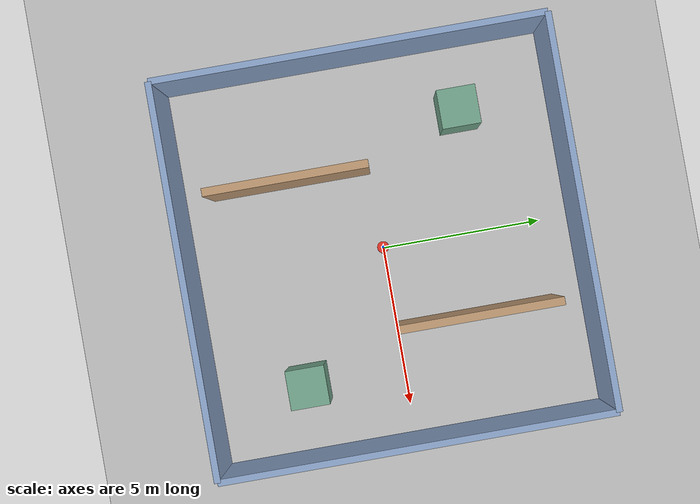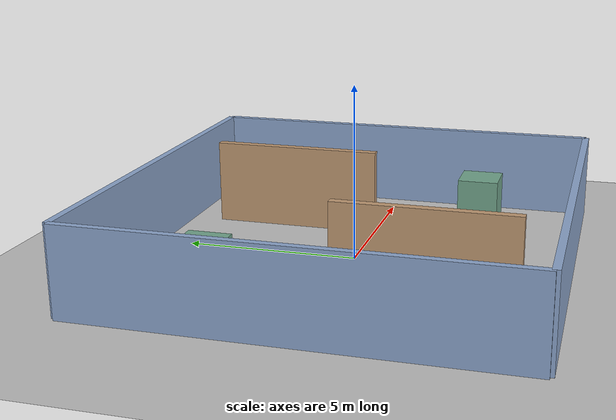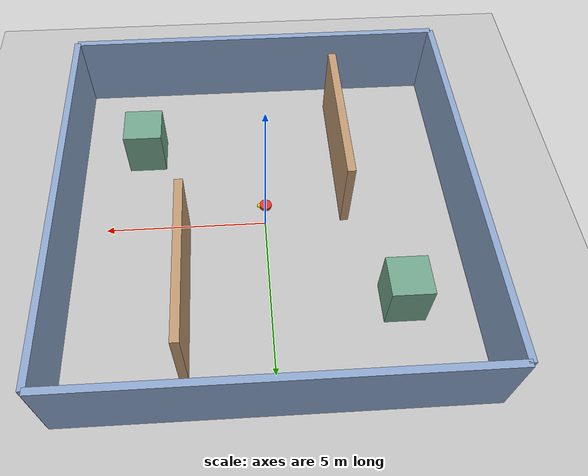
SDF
<?xml version='1.0' encoding='utf-8'?>
<sdf version="1.6">
  <world name="fuel_room">
    <gravity>0 0 -9.81</gravity>
    <physics type="ode">
      <max_step_size>0.002</max_step_size>
      <real_time_update_rate>500</real_time_update_rate>
    </physics>
    <scene>
      <ambient>0.6 0.6 0.6 1</ambient>
      <background>0.8 0.85 0.9 1</background>
    </scene>
    <light name="sun" type="directional">
      <pose>0 0 10 0 0 0</pose>
      <diffuse>0.8 0.8 0.8 1</diffuse>
      <direction>-0.2 -0.4 -1</direction>
    </light>
    <model name="ground">
      <static>true</static>
      <link name="ground">
        <collision name="collision">
          <geometry>
            <plane>
              <normal>0 0 1</normal>
              <size>20 20</size>
            </plane>
          </geometry>
        </collision>
        <visual name="visual">
          <geometry>
            <plane>
              <normal>0 0 1</normal>
              <size>20 20</size>
            </plane>
          </geometry>
          <material>
            <ambient>0.75 0.75 0.75 1</ambient>
          </material>
        </visual>
      </link>
    </model>
    <model name="north_wall">
      <static>true</static>
      <pose>0 6 1.25 0 0 0</pose>
      <link name="body">
        <collision name="c">
          <geometry>
            <box>
              <size>12 0.2 2.5</size>
            </box>
          </geometry>
        </collision>
        <visual name="v">
          <geometry>
            <box>
              <size>12 0.2 2.5</size>
            </box>
          </geometry>
          <material>
            <ambient>0.55 0.65 0.8 1</ambient>
          </material>
        </visual>
      </link>
    </model>
    <model name="south_wall">
      <static>true</static>
      <pose>0 -6 1.25 0 0 0</pose>
      <link name="body">
        <collision name="c">
          <geometry>
            <box>
              <size>12 0.2 2.5</size>
            </box>
          </geometry>
        </collision>
        <visual name="v">
          <geometry>
            <box>
              <size>12 0.2 2.5</size>
            </box>
          </geometry>
          <material>
            <ambient>0.55 0.65 0.8 1</ambient>
          </material>
        </visual>
      </link>
    </model>
    <model name="east_wall">
      <static>true</static>
      <pose>6 0 1.25 0 0 0</pose>
      <link name="body">
        <collision name="c">
          <geometry>
            <box>
              <size>0.2 12 2.5</size>
            </box>
          </geometry>
        </collision>
        <visual name="v">
          <geometry>
            <box>
              <size>0.2 12 2.5</size>
            </box>
          </geometry>
          <material>
            <ambient>0.55 0.65 0.8 1</ambient>
          </material>
        </visual>
      </link>
    </model>
    <model name="west_wall">
      <static>true</static>
      <pose>-6 0 1.25 0 0 0</pose>
      <link name="body">
        <collision name="c">
          <geometry>
            <box>
              <size>0.2 12 2.5</size>
            </box>
          </geometry>
        </collision>
        <visual name="v">
          <geometry>
            <box>
              <size>0.2 12 2.5</size>
            </box>
          </geometry>
          <material>
            <ambient>0.55 0.65 0.8 1</ambient>
          </material>
        </visual>
      </link>
    </model>
    <model name="partition_a">
      <static>true</static>
      <pose>2.5 2.5 1.25 0 0 0</pose>
      <link name="body">
        <collision name="c">
          <geometry>
            <box>
              <size>0.25 5 2.5</size>
            </box>
          </geometry>
        </collision>
        <visual name="v">
          <geometry>
            <box>
              <size>0.25 5 2.5</size>
            </box>
          </geometry>
          <material>
            <ambient>0.75 0.6 0.45 1</ambient>
          </material>
        </visual>
      </link>
    </model>
    <model name="partition_b">
      <static>true</static>
      <pose>-2.5 -2.5 1.25 0 0 0</pose>
      <link name="body">
        <collision name="c">
          <geometry>
            <box>
              <size>0.25 5 2.5</size>
            </box>
          </geometry>
        </collision>
        <visual name="v">
          <geometry>
            <box>
              <size>0.25 5 2.5</size>
            </box>
          </geometry>
          <material>
            <ambient>0.75 0.6 0.45 1</ambient>
          </material>
        </visual>
      </link>
    </model>
    <model name="block_a">
      <static>true</static>
      <pose>3.8 -3.0 0.8 0 0 0</pose>
      <link name="body">
        <collision name="c">
          <geometry>
            <box>
              <size>1.2 1.2 1.6</size>
            </box>
          </geometry>
        </collision>
        <visual name="v">
          <geometry>
            <box>
              <size>1.2 1.2 1.6</size>
            </box>
          </geometry>
          <material>
            <ambient>0.45 0.65 0.55 1</ambient>
          </material>
        </visual>
      </link>
    </model>
    <model name="block_b">
      <static>true</static>
      <pose>-3.8 3.0 0.8 0 0 0</pose>
      <link name="body">
        <collision name="c">
          <geometry>
            <box>
              <size>1.2 1.2 1.6</size>
            </box>
          </geometry>
        </collision>
        <visual name="v">
          <geometry>
            <box>
              <size>1.2 1.2 1.6</size>
            </box>
          </geometry>
          <material>
            <ambient>0.45 0.65 0.55 1</ambient>
          </material>
        </visual>
      </link>
    </model>
    <model name="fuel_drone">
      <pose>0 0 1 0 0 0</pose>
      <link name="body">
        <inertial>
          <mass>0.98</mass>
          <inertia>
            <ixx>0.015</ixx>
            <iyy>0.015</iyy>
            <izz>0.025</izz>
          </inertia>
        </inertial>
        <collision name="collision">
          <geometry>
            <cylinder>
              <radius>0.18</radius>
              <length>0.10</length>
            </cylinder>
          </geometry>
        </collision>
        <visual name="visual">
          <geometry>
            <cylinder>
              <radius>0.18</radius>
              <length>0.10</length>
            </cylinder>
          </geometry>
          <material>
            <ambient>0.9 0.2 0.15 1</ambient>
          </material>
        </visual>
        <visual name="front">
          <pose>0.2 0 0 0 0 0</pose>
          <geometry>
            <sphere>
              <radius>0.06</radius>
            </sphere>
          </geometry>
          <material>
            <ambient>1 1 0 1</ambient>
          </material>
        </visual>
        <sensor name="front_depth" type="depth">
          <always_on>true</always_on>
          <update_rate>15</update_rate>
          <pose>0 0 0 0 0 0</pose>
          <camera>
            <horizontal_fov>1.3962634</horizontal_fov>
            <image>
              <width>640</width>
              <height>480</height>
              <format>R8G8B8</format>
            </image>
            <clip>
              <near>0.2</near>
              <far>5.0</far>
            </clip>
          </camera>
          <plugin name="depth_ros" filename="libgazebo_ros_depth_camera.so">
            <robotNamespace>/gazebo_fuel</robotNamespace>
            <cameraName>camera</cameraName>
            <depthImageTopicName>depth/image_raw</depthImageTopicName>
            <depthImageCameraInfoTopicName>depth/camera_info</depthImageCameraInfoTopicName>
            <imageTopicName>image_raw</imageTopicName>
            <cameraInfoTopicName>camera_info</cameraInfoTopicName>
            <pointCloudTopicName>points</pointCloudTopicName>
            <frameName>camera_optical</frameName>
            <updateRate>0</updateRate>
            <pointCloudCutoff>0.2</pointCloudCutoff>
          </plugin>
        </sensor>
        <sensor name="front_lidar" type="ray">
          <pose>0 0 0.15 0 0 0</pose>
          <always_on>true</always_on>
          <update_rate>10</update_rate>
          <visualize>false</visualize>
          <ray>
            <scan>
              <horizontal>
                <samples>240</samples>
                <resolution>1</resolution>
                <min_angle>-1.04719755</min_angle>
                <max_angle>1.04719755</max_angle>
              </horizontal>
              <vertical>
                <samples>32</samples>
                <resolution>1</resolution>
                <min_angle>-0.52359878</min_angle>
                <max_angle>0.52359878</max_angle>
              </vertical>
            </scan>
            <range>
              <min>0.2</min>
              <max>8.0</max>
              <resolution>0.01</resolution>
            </range>
          </ray>
          <plugin name="lidar_ros" filename="libgazebo_ros_block_laser.so">
            <robotNamespace>/gazebo_fuel</robotNamespace>
            <topicName>lidar/points_raw</topicName>
            <frameName>lidar_link</frameName>
            <gaussianNoise>0.0</gaussianNoise>
            <hokuyoMinIntensity>0.0</hokuyoMinIntensity>
            <updateRate>0</updateRate>
          </plugin>
        </sensor>
      </link>
      <plugin name="fuel_controller" filename="libfuel_gazebo_controller.so" />
    </model>
  </world>
</sdf>
